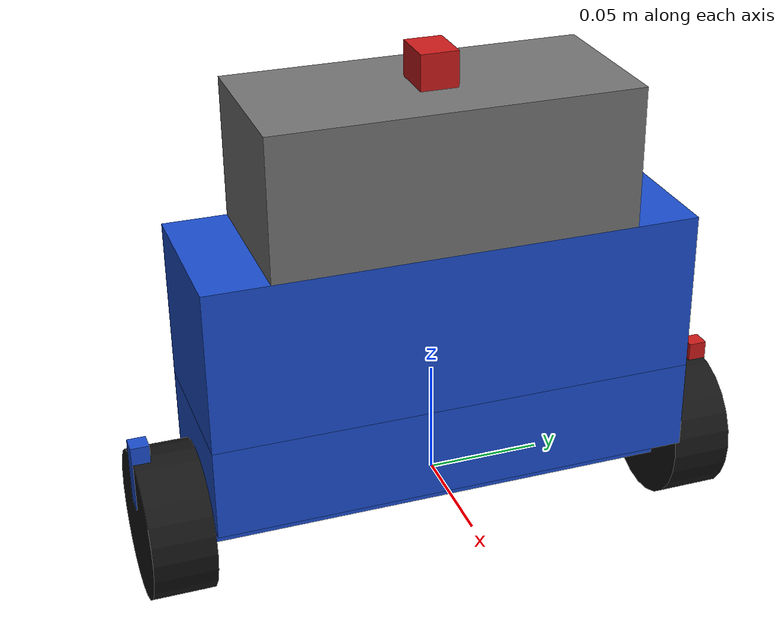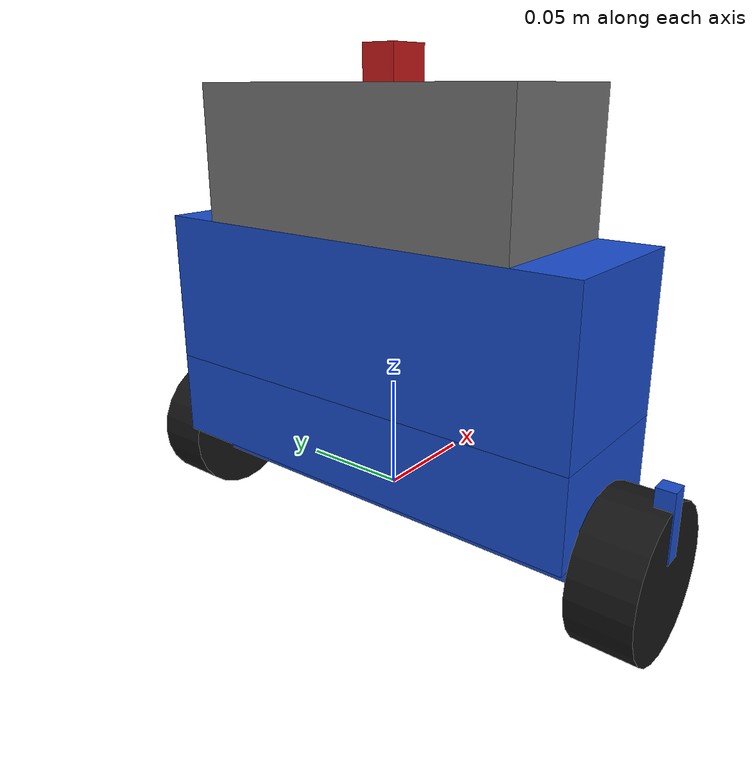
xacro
<?xml version="1.0"?>
<robot name="segway_mini" xmlns:xacro="http://www.ros.org/wiki/xacro">

  <!-- ============================================================
       PARAMÈTRES GÉOMÉTRIQUES
  ============================================================ -->

  <!-- Châssis -->
  <xacro:property name="chassis_x" value="0.070"/>  <!-- profondeur 70mm -->
  <xacro:property name="chassis_y" value="0.210"/>  <!-- largeur 210mm -->

  <!-- Roues -->
  <xacro:property name="wheel_r"   value="0.0325"/> <!-- rayon Ø65/2 -->
  <xacro:property name="wheel_w"   value="0.027"/>  <!-- largeur 27mm -->
  <xacro:property name="wheel_y"   value="${chassis_y/2 + wheel_w/2}"/>
  <!-- Largeur totale = 0.210 + 2×0.027 = 0.264m -->

  <!-- Moteur -->
  <xacro:property name="motor_rpm_noload" value="1000"/>
  <xacro:property name="gear_ratio"       value="70"/>
  <xacro:property name="wheel_rpm_max"    value="130"/>
  <xacro:property name="encoder_cpr"      value="11"/>
  <!-- Résolution roue = 11 × 70 × 4 = 3080 counts/tr -->

  <xacro:property name="motor_hz"  value="0.010"/>  <!-- 20mm/2 -->
  <xacro:property name="elec_hz"   value="0.020"/>  <!-- 40mm/2 -->
  <xacro:property name="cards_hz"  value="0.035"/>  <!-- 70mm/2 -->
  <xacro:property name="lipo_hz"   value="0.030"/>  <!-- 60mm/2 -->
  <xacro:property name="imu_hz"    value="0.0075"/> <!-- 15mm/2 -->

  <!-- Z centres -->
  <xacro:property name="z_motor"   value="0.000"/>  <!-- centré sur axe roues -->
  <xacro:property name="z_elec"    value="0.030"/>  <!-- +30mm -->
  <xacro:property name="z_cards"   value="0.085"/>  <!-- +85mm -->
  <xacro:property name="z_lipo"    value="0.150"/>  <!-- +150mm -->
  <xacro:property name="z_imu"     value="0.1875"/> <!-- +187.5mm -->

  <!-- ============================================================
       MASSES (kg)
  ============================================================ -->
  <xacro:property name="m_wheel"  value="0.120"/>  <!-- par roue -->
  <xacro:property name="m_motor"  value="0.110"/>  <!-- 2 motoréducteurs -->
  <xacro:property name="m_elec"   value="0.050"/>  <!-- pont H + convertisseurs -->
  <xacro:property name="m_cards"  value="0.050"/>  <!-- RPi + Nucleo -->
  <xacro:property name="m_lipo"   value="0.760"/>  <!-- 0.380 LiPo 3S pesée -->
  <xacro:property name="m_imu"    value="0.003"/>  <!-- MPU6050 -->

  <!-- ============================================================
       MATÉRIAUX
  ============================================================ -->
  <material name="wheel_black">  <color rgba="0.08 0.08 0.08 1.0"/> </material>
  <material name="body_blue">    <color rgba="0.10 0.30 0.80 1.0"/> </material>
  <material name="elec_blue">    <color rgba="0.10 0.30 0.80 1.0"/> </material>
  <material name="cards_green">  <color rgba="0.05 0.50 0.15 1.0"/> </material>
  <material name="battery_grey"> <color rgba="0.45 0.45 0.45 1.0"/> </material>
  <material name="imu_red">      <color rgba="0.80 0.10 0.10 1.0"/> </material>

  <!-- ============================================================
       MACROS INERTIELLES
  ============================================================ -->
  <xacro:macro name="inertia_box" params="m x y z">
    <inertial>
      <mass value="${m}"/>
      <inertia ixx="${m*(y*y + z*z)/12.0}" ixy="0.0" ixz="0.0"
               iyy="${m*(x*x + z*z)/12.0}" iyz="0.0"
               izz="${m*(x*x + y*y)/12.0}"/>
    </inertial>
  </xacro:macro>

  <xacro:macro name="inertia_cylinder" params="m r l">
    <inertial>
      <mass value="${m}"/>
      <inertia ixx="${m*(3.0*r*r + l*l)/12.0}" ixy="0.0" ixz="0.0"
               iyy="${m*(3.0*r*r + l*l)/12.0}" iyz="0.0"
               izz="${m*r*r/2.0}"/>
    </inertial>
  </xacro:macro>

  <link name="base_link">
    <inertial>
      <mass value="0.001"/>
      <inertia ixx="1e-6" ixy="0" ixz="0"
               iyy="1e-6" iyz="0" izz="1e-6"/>
    </inertial>
  </link>

  <!-- ============================================================
       ROUES
  ============================================================ -->
  <xacro:macro name="wheel" params="side sign">
    <link name="${side}_wheel_link">
      <xacro:inertia_cylinder m="${m_wheel}" r="${wheel_r}" l="${wheel_w}"/>
      <visual>
        <origin xyz="0 0 0" rpy="${pi/2} 0 0"/>
        <geometry>
          <cylinder radius="${wheel_r}" length="${wheel_w}"/>
        </geometry>
        <material name="wheel_black"/>
      </visual>
      <collision>
        <origin xyz="0 0 0" rpy="${pi/2} 0 0"/>
        <geometry>
          <cylinder radius="${wheel_r}" length="${wheel_w}"/>
        </geometry>
      </collision>
    </link>

    <joint name="${side}_wheel_joint" type="continuous">
      <parent link="base_link"/>
      <child  link="${side}_wheel_link"/>
      <origin xyz="0 ${sign * wheel_y} 0" rpy="0 0 0"/>
      <axis   xyz="0 1 0"/>
      <dynamics damping="0.01" friction="0.05"/>
    </joint>
  </xacro:macro>

  <xacro:wheel side="left"  sign=" 1"/>
  <xacro:wheel side="right" sign="-1"/>

  <link name="motor_link">
    <xacro:inertia_box m="${m_motor}" x="0.020" y="0.210" z="0.020"/>
    <visual>
      <origin xyz="0 0 0" rpy="0 0 0"/>
      <geometry>
        <box size="0.020 0.210 0.020"/>
      </geometry>
      <material name="body_blue"/>
    </visual>
    <collision>
      <origin xyz="0 0 0" rpy="0 0 0"/>
      <geometry>
        <box size="0.020 0.210 0.020"/>
      </geometry>
    </collision>
  </link>
  <joint name="motor_joint" type="fixed">
    <parent link="base_link"/>
    <child  link="motor_link"/>
    <origin xyz="0 0 ${z_motor}" rpy="0 0 0"/>
  </joint>

  <link name="elec_link">
    <xacro:inertia_box m="${m_elec}" x="0.070" y="0.210" z="0.040"/>
    <visual>
      <origin xyz="0 0 0" rpy="0 0 0"/>
      <geometry>
        <box size="0.070 0.210 0.040"/>
      </geometry>
      <material name="elec_blue"/>
    </visual>
    <collision>
      <origin xyz="0 0 0" rpy="0 0 0"/>
      <geometry>
        <box size="0.070 0.210 0.040"/>
      </geometry>
    </collision>
  </link>
  <joint name="elec_joint" type="fixed">
    <parent link="base_link"/>
    <child  link="elec_link"/>
    <origin xyz="0 0 ${z_elec}" rpy="0 0 0"/>
  </joint>

  <link name="cards_link">
    <xacro:inertia_box m="${m_cards}" x="0.070" y="0.210" z="0.070"/>
    <visual>
      <origin xyz="0 0 0" rpy="0 0 0"/>
      <geometry>
        <box size="0.070 0.210 0.070"/>
      </geometry>
      <material name="elec_blue"/>
    </visual>
    <collision>
      <origin xyz="0 0 0" rpy="0 0 0"/>
      <geometry>
        <box size="0.070 0.210 0.070"/>
      </geometry>
    </collision>
  </link>
  <joint name="cards_joint" type="fixed">
    <parent link="base_link"/>
    <child  link="cards_link"/>
    <origin xyz="0 0 ${z_cards}" rpy="0 0 0"/>
  </joint>

  <link name="lipo_link">
    <xacro:inertia_box m="${m_lipo}" x="0.070" y="0.155" z="0.060"/>
    <visual>
      <origin xyz="0 0 0" rpy="0 0 0"/>
      <geometry>
        <box size="0.070 0.155 0.060"/>
      </geometry>
      <material name="battery_grey"/>
    </visual>
    <collision>
      <origin xyz="0 0 0" rpy="0 0 0"/>
      <geometry>
        <box size="0.070 0.155 0.060"/>
      </geometry>
    </collision>
  </link>
  <joint name="lipo_joint" type="fixed">
    <parent link="base_link"/>
    <child  link="lipo_link"/>
    <origin xyz="0 0 ${z_lipo}" rpy="0 0 0"/>
  </joint>

  <link name="imu_link">
    <xacro:inertia_box m="${m_imu}" x="0.020" y="0.016" z="0.015"/>
    <visual>
      <origin xyz="0 0 0" rpy="0 0 0"/>
      <geometry>
        <box size="0.020 0.016 0.015"/>
      </geometry>
      <material name="imu_red"/>
    </visual>
  </link>
  <joint name="imu_joint" type="fixed">
    <parent link="base_link"/>
    <child  link="imu_link"/>
    <origin xyz="0 0 ${z_imu}" rpy="0 0 0"/>
  </joint>

  <!-- Wheel rotation markers -->
  <link name="left_wheel_marker">
    <visual>
      <origin xyz="0 0.010 0.025" rpy="0 0 0"/>
      <geometry>
        <box size="0.008 0.008 0.030"/>
      </geometry>
      <material name="imu_red"/>
    </visual>
  </link>

  <joint name="left_wheel_marker_joint" type="fixed">
    <parent link="left_wheel_link"/>
    <child link="left_wheel_marker"/>
    <origin xyz="0 0 0" rpy="0 0 0"/>
  </joint>

  <link name="right_wheel_marker">
    <visual>
      <origin xyz="0 -0.010 0.025" rpy="0 0 0"/>
      <geometry>
        <box size="0.008 0.008 0.030"/>
      </geometry>
      <material name="elec_blue"/>
    </visual>
  </link>

  <joint name="right_wheel_marker_joint" type="fixed">
    <parent link="right_wheel_link"/>
    <child link="right_wheel_marker"/>
    <origin xyz="0 0 0" rpy="0 0 0"/>
  </joint>

  <ros2_control name="GazeboSystem" type="system">
    <hardware>
      <plugin>gazebo_ros2_control/GazeboSystem</plugin>
    </hardware>

    <joint name="left_wheel_joint">
      <command_interface name="effort"/>
      <state_interface name="position"/>
      <state_interface name="velocity"/>
    </joint>

    <joint name="right_wheel_joint">
      <command_interface name="effort"/>
      <state_interface name="position"/>
      <state_interface name="velocity"/>
    </joint>
  </ros2_control>

  <!-- ============================================================
       GAZEBO – PLUGINS ROS2 / Gazebo Classic (gazebo11)
  ============================================================ -->

  <!-- Friction roues sur sol — anti-patinage -->
  <gazebo reference="left_wheel_link">
<mu1>1.0</mu1>
<mu2>1.0</mu2>
<kp>100000</kp>
<kd>10</kd>
  </gazebo>
  <gazebo reference="right_wheel_link">
<mu1>1.0</mu1>
<mu2>1.0</mu2>
<kp>100000</kp>
<kd>10</kd>
  </gazebo>

  <!-- Gazebo materials -->
  <gazebo reference="left_wheel_link">
    <material>Gazebo/Black</material>
  </gazebo>

  <gazebo reference="right_wheel_link">
    <material>Gazebo/Black</material>
  </gazebo>

  <gazebo reference="motor_link">
    <material>Gazebo/Blue</material>
  </gazebo>

  <gazebo reference="elec_link">
    <material>Gazebo/Blue</material>
  </gazebo>

  <gazebo reference="cards_link">
    <material>Gazebo/Blue</material>
  </gazebo>

  <gazebo reference="lipo_link">
    <material>Gazebo/Grey</material>
  </gazebo>

  <gazebo reference="left_wheel_marker">
    <material>Gazebo/Red</material>
  </gazebo>

  <gazebo reference="right_wheel_marker">
    <material>Gazebo/Blue</material>
  </gazebo>

  <gazebo reference="imu_link">
    <material>Gazebo/Red</material>
  </gazebo>

<!-- Plugin gazebo_ros2_control — pont Gazebo Classic ↔ ros2_control -->
<gazebo>
  <plugin filename="libgazebo_ros2_control.so"
          name="gazebo_ros2_control">
    <ros>
      <namespace>/segway</namespace>
    </ros>
    <parameters>$(find segway_gazebo)/config/segway_controllers.yaml</parameters>
  </plugin>
</gazebo>

  <!-- Plugin joint_state_publisher -->

  <!-- Plugin IMU — bruit calqué datasheet MPU6050 -->
  <gazebo reference="imu_link">
    <sensor name="imu_sensor" type="imu">
      <always_on>true</always_on>
      <update_rate>100</update_rate>
      <plugin filename="libgazebo_ros_imu_sensor.so"
              name="imu_plugin">
        <ros>
          <namespace>/segway</namespace>
          <remapping>~/out:=imu/data</remapping>
        </ros>
        <initial_orientation_as_reference>false</initial_orientation_as_reference>
      </plugin>
      <imu>
        <angular_velocity>
          <x><noise type="gaussian"><mean>0.0</mean><stddev>2e-4</stddev></noise></x>
          <y><noise type="gaussian"><mean>0.0</mean><stddev>2e-4</stddev></noise></y>
          <z><noise type="gaussian"><mean>0.0</mean><stddev>2e-4</stddev></noise></z>
        </angular_velocity>
        <linear_acceleration>
          <x><noise type="gaussian"><mean>0.0</mean><stddev>1.7e-2</stddev></noise></x>
          <y><noise type="gaussian"><mean>0.0</mean><stddev>1.7e-2</stddev></noise></y>
          <z><noise type="gaussian"><mean>0.0</mean><stddev>1.7e-2</stddev></noise></z>
        </linear_acceleration>
      </imu>
    </sensor>
  </gazebo>

  <!-- Ground truth odometry (Gazebo physics engine) -->
  <gazebo>
    <plugin filename="libgazebo_ros_p3d.so"
            name="ground_truth_odom">
      <ros>
        <namespace>/segway</namespace>
      </ros>
      <body_name>base_link</body_name>
      <topic_name>odom</topic_name>
      <frame_name>world</frame_name>
      <update_rate>100.0</update_rate>
      <gaussian_noise>0.0</gaussian_noise>
    </plugin>
  </gazebo>

</robot>
